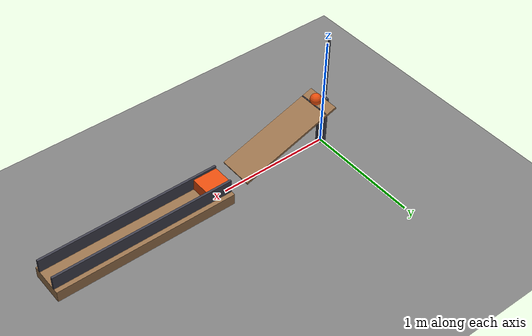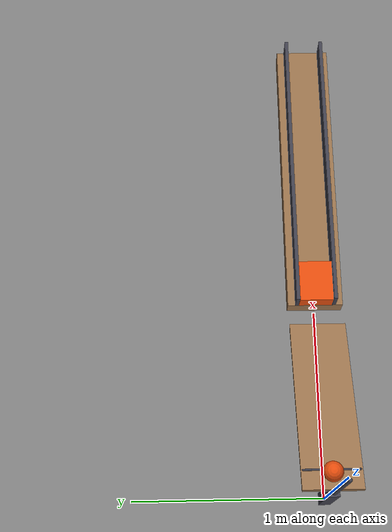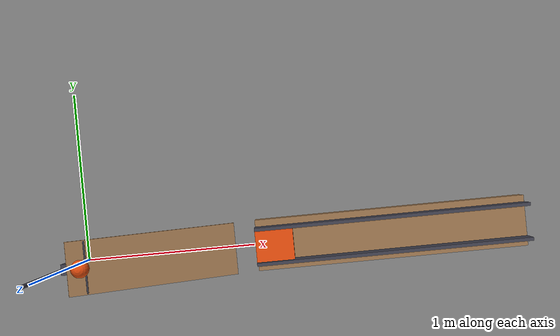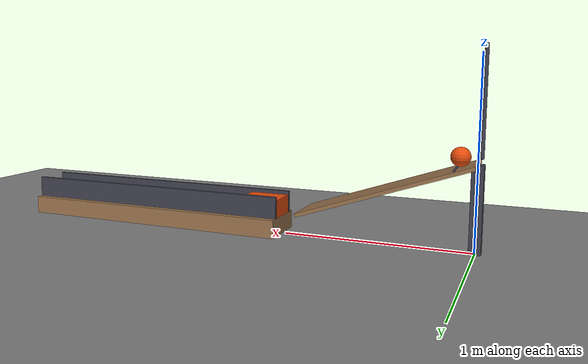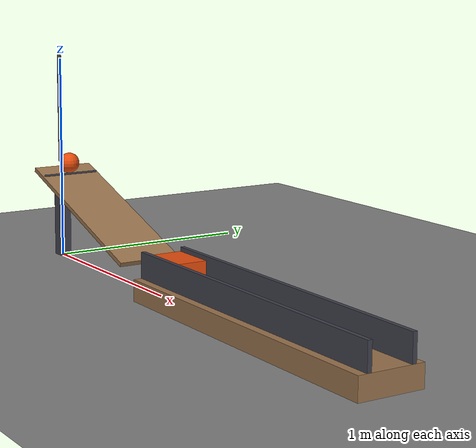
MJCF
<mujoco model="pendulum_ramp_and_cart">
  <compiler angle="radian"/>
  <option timestep="0.002"/>
  <worldbody>
    <geom name="floor" type="plane" size="6 6 0.1" friction="0.68 0.005 0.0001"/>
    <body name="ramp1">
      <geom name="ramp1" type="box" pos="0.449121 0 0.29519" size="0.475 0.15 0.01" euler="0 0.331613 0" friction="0.68 0.005 0.0001" solref="0.01 1" rgba="0.6 0.45 0.3 1"/>
    </body>
    <body name="ramp support">
      <geom name="ramp support" type="box" pos="0 0 0.224917" size="0.03 0.03 0.224917" friction="0.68 0.005 0.0001" solref="0.01 1" rgba="0.25 0.25 0.3 1"/>
    </body>
    <body name="starting lip">
      <geom name="starting lip" type="capsule" size="0.005" fromto="0.0994359 0.14 0.431461 0.0994359 -0.14 0.431461" friction="0.68 0.005 0.0001" solref="0.01 1" rgba="0.25 0.25 0.3 1"/>
    </body>
    <body name="ball1" pos="0.0841603 0 0.484313">
      <freejoint/>
      <geom name="ball1" type="sphere" pos="0 0 0" size="0.05" mass="0.2" condim="6" friction="0.68 0.005 0.0001" solref="0.01 1" rgba="0.9 0.3 0.05 1"/>
    </body>
    <body name="pendulum1" pos="-0.0158397 0 1.03431">
      <joint name="pendulum_hinge" type="hinge" pos="0 0 0" axis="0 1 0" damping="0.04"/>
      <geom name="pendulum1" type="capsule" size="0.01" fromto="0 0 0 0 0 -0.55" mass="0.4" friction="0.68 0.005 0.0001" solref="0.01 1" rgba="0.25 0.25 0.3 1"/>
    </body>
    <body name="cart landing">
      <geom name="cart landing" type="box" pos="1.8215 0 0.05" size="0.8 0.15 0.05" friction="0.68 0.005 0.0001" solref="0.01 1" rgba="0.6 0.45 0.3 1"/>
    </body>
    <body name="left slide guide">
      <geom name="left slide guide" type="box" pos="1.8215 0.101 0.16" size="0.8 0.01 0.06" friction="0.68 0.005 0.0001" solref="0.01 1" rgba="0.25 0.25 0.3 1"/>
    </body>
    <body name="right slide guide">
      <geom name="right slide guide" type="box" pos="1.8215 -0.101 0.16" size="0.8 0.01 0.06" friction="0.68 0.005 0.0001" solref="0.01 1" rgba="0.25 0.25 0.3 1"/>
    </body>
    <body name="cart1" pos="1.1315 0 0.15">
      <freejoint/>
      <geom name="cart1" type="box" pos="0 0 0" size="0.11 0.09 0.05" mass="0.5" friction="0.68 0.005 0.0001" solref="0.01 1" rgba="0.9 0.3 0.05 1"/>
    </body>
  </worldbody>
  <keyframe>
    <key name="start" qpos="0.0841603 0 0.484313 1 0 0 0 0.959931 1.1315 0 0.15 1 0 0 0" qvel="0 0 0 0 0 0 0 0 0 0 0 0 0"/>
  </keyframe>
</mujoco>
